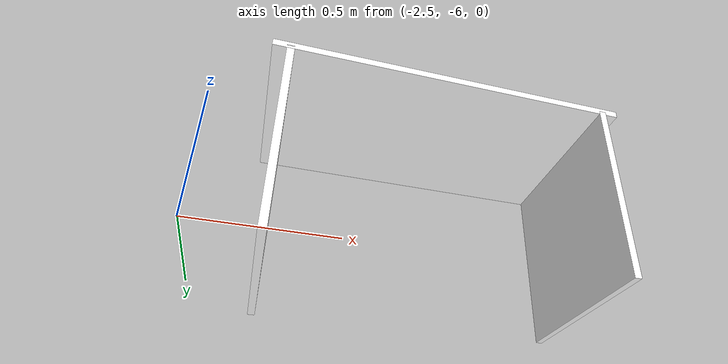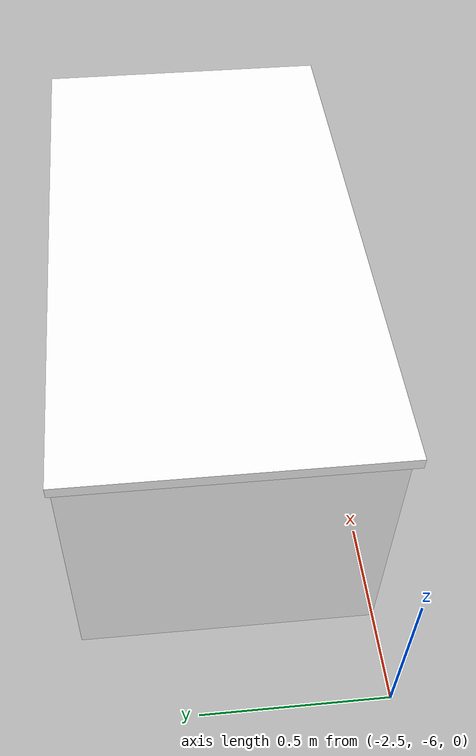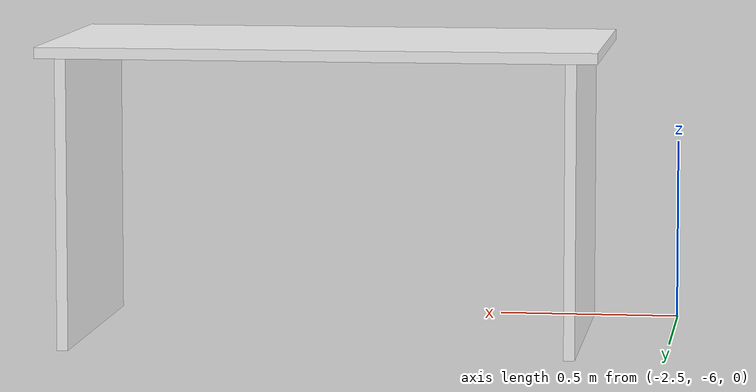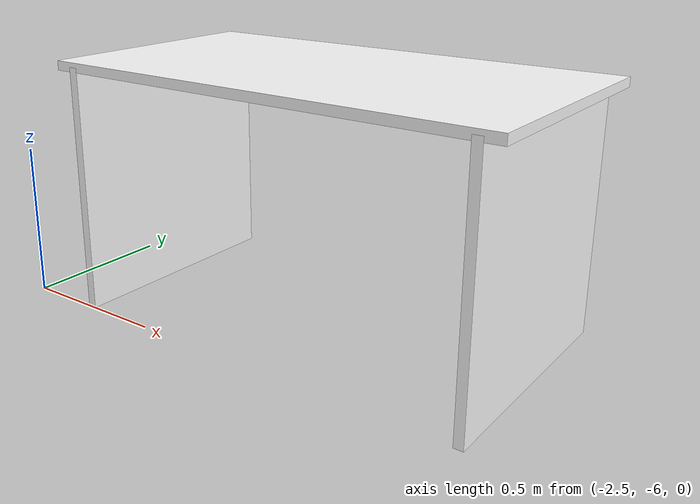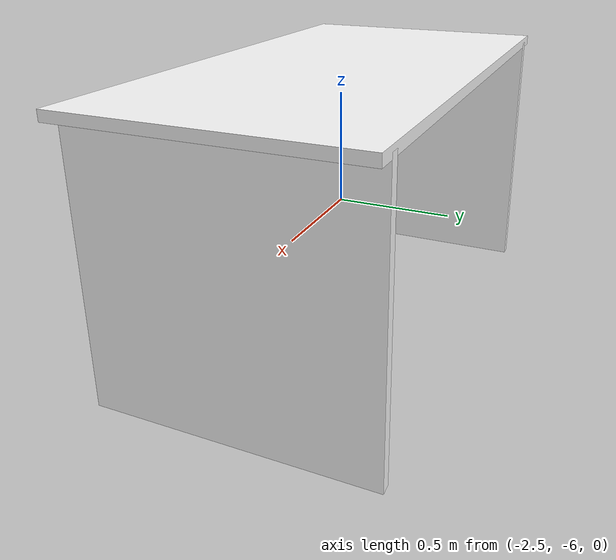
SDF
<?xml version="1.0" ?>
<sdf version="1.6">
<model name="table">
    <static>0</static>
    <link name="link">
    <collision name="surface">
        <pose>0.000000 0.000000 0.800000 0.000000 0.000000 0.000000</pose>
        <geometry>
        <box>
            <size>1.500000 0.800000 0.030000</size>
        </box>
        </geometry>
        <surface>
        <bounce />
        <friction>
            <ode />
        </friction>
        <contact>
            <ode />
        </contact>
        </surface>
        <max_contacts>10</max_contacts>
    </collision>

    <visual name="visual1">
        <pose>0.000000 0.000000 0.8000000 0.000000 0.000000 0.000000</pose>
        <geometry>
        <box>
            <size>1.500000 0.800000 0.030000</size>
        </box>
        </geometry>
        <material>
            <ambient>1 1 1 1</ambient>
            <diffuse>1 1 1 1</diffuse>
            <pbr>
            <metal>
                <albedo_map>/home/marat/exchange_project_ws/src/collab_industrial_research/gz_world_package/models/table/materials/textures/white_table.png</albedo_map>
                <roughness>0.8</roughness>
                <metalness>0.1</metalness>
            </metal>
            </pbr>
        </material>

    </visual>

    <collision name="front_left_leg">
        <pose>0.680000 0.00000 0.400000 0.000000 0.000000 0.000000</pose>
        <geometry>
            <box>
            <size>0.0300000 0.800000 0.8</size>
        </box>
        </geometry>
        <surface>
        <bounce />
        <friction>
            <ode />
        </friction>
        <contact>
            <ode />
        </contact>
        </surface>
        <max_contacts>10</max_contacts>
    </collision>
    <visual name="front_left_leg">
        <pose>0.680000 0.00000 0.400000 0.000000 0.000000 0.000000</pose>
        <geometry>
            <box>
            <size>0.0300000 0.800000 0.8</size>
        </box>
        </geometry>
        <material>
            <ambient>1 1 1 1</ambient>
            <diffuse>1 1 1 1</diffuse>
            <pbr>
            <metal>
                <albedo_map>/home/marat/exchange_project_ws/src/collab_industrial_research/gz_world_package/models/table/materials/textures/white_table.png</albedo_map>
                <roughness>0.8</roughness>
                <metalness>0.1</metalness>
            </metal>
            </pbr>
        </material>
    </visual>
    <collision name="front_right_leg">
        <pose>-0.680000 0.00000 0.400000 0.000000 0.000000 0.000000</pose>
        <geometry>
            <box>
            <size>0.0300000 0.800000 0.8</size>
        </box>
        </geometry>
        <surface>
        <bounce />
        <friction>
            <ode />
        </friction>
        <contact>
            <ode />
        </contact>
        </surface>
        <max_contacts>10</max_contacts>
    </collision>
    <visual name="front_right_leg">
        <pose>-0.680000 0.00000 0.400000 0.000000 0.000000 0.000000</pose>
        <geometry>
            <box>
            <size>0.0300000 0.800000 0.8</size>
        </box>
        </geometry>
        <material>
            <ambient>1 1 1 1</ambient>
            <diffuse>1 1 1 1</diffuse>
            <pbr>
            <metal>
                <albedo_map>/home/marat/exchange_project_ws/src/collab_industrial_research/gz_world_package/models/table/materials/textures/white_table.png</albedo_map>
                <roughness>0.8</roughness>
                <metalness>0.1</metalness>
            </metal>
            </pbr>
        </material>
    </visual>

    <velocity_decay>
        <linear>0.000000</linear>
        <angular>0.000000</angular>
    </velocity_decay>
    <self_collide>0</self_collide>
    <kinematic>0</kinematic>
    <gravity>1</gravity>
    </link>
    <pose>-1.57000 -5.6000 0.000000 0.000000 0.000000 0</pose>
</model>
</sdf>
